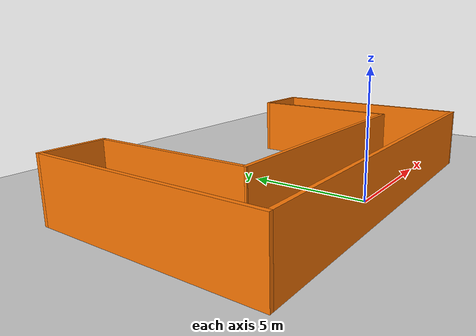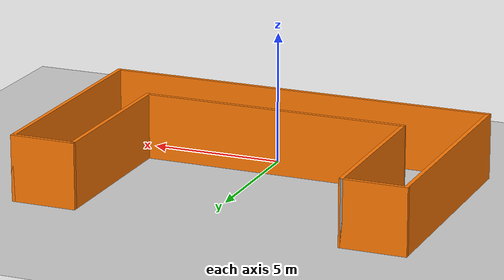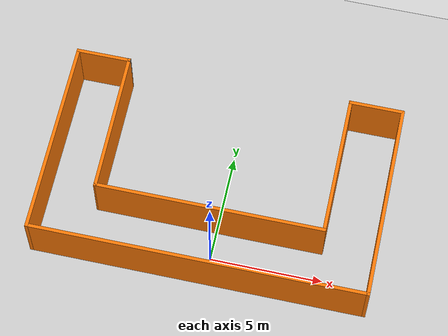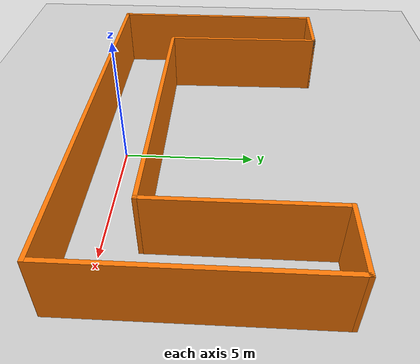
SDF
<sdf version="1.6">
 <world name="default">
  <light name="sun" type="directional">
   <pose>0 0 10 0 -0 0</pose>
   <diffuse>0.8 0.8 0.8 1</diffuse>
   <specular>0.2 0.2 0.2 1</specular>
   <attenuation>
    <range>1000</range>
    <constant>0.9</constant>
    <linear>0.01</linear>
    <quadratic>0.001</quadratic>
   </attenuation>
   <direction>-0.5 0.1 -0.9</direction>
  </light>
  <model name="ground_plane">
   <static>1</static>
   <link name="link">
    <collision name="collision">
     <geometry><plane><normal>0 0 1</normal><size>100 100</size></plane></geometry>
     <surface>
      <contact><collide_bitmask>65535</collide_bitmask></contact>
      <friction><ode><mu>100</mu><mu2>50</mu2></ode></friction>
     </surface>
    </collision>
    <visual name="visual">
     <cast_shadows>0</cast_shadows>
     <geometry><plane><normal>0 0 1</normal><size>100 100</size></plane></geometry>
     <material>
      <script><uri>file://media/materials/scripts/gazebo.material</uri><name>Gazebo/Grey</name></script>
     </material>
    </visual>
   </link>
  </model>
  <gravity>0 0 -9.8</gravity>
  <magnetic_field>6e-06 2.3e-05 -4.2e-05</magnetic_field>
  <atmosphere type="adiabatic"/>
  <physics name="default_physics" default="0" type="ode">
   <max_step_size>0.001</max_step_size>
   <real_time_factor>1</real_time_factor>
   <real_time_update_rate>1000</real_time_update_rate>
  </physics>
  <scene><ambient>0.4 0.4 0.4 1</ambient><background>0.7 0.7 0.7 1</background><shadows>1</shadows></scene>
  <spherical_coordinates>
   <surface_model>EARTH_WGS84</surface_model>
   <latitude_deg>0</latitude_deg>
   <longitude_deg>0</longitude_deg>
   <elevation>0</elevation>
   <heading_deg>0</heading_deg>
  </spherical_coordinates>
  <model name="Myworld">
   <pose>-0.381549 3.28184 0 0 -0 0</pose>
   <link name="Wall_0">
    <collision name="Wall_0_Collision">
     <geometry><box><size>2.5 0.15 2.5</size></box></geometry>
     <pose>0 0 1.25 0 -0 0</pose>
    </collision>
    <visual name="Wall_0_Visual">
     <pose>0 0 1.25 0 -0 0</pose>
     <geometry><box><size>2.5 0.15 2.5</size></box></geometry>
     <material>
      <script><uri>file://media/materials/scripts/gazebo.material</uri><name>Gazebo/Grey</name></script>
      <ambient>0.996078 0.47451 0.0196078 1</ambient>
     </material>
     <meta><layer>0</layer></meta>
    </visual>
    <pose>-6.25 4.42476 0 0 -0 3.14159</pose>
   </link>
   <link name="Wall_1">
    <collision name="Wall_1_Collision">
     <geometry><box><size>9 0.15 2.5</size></box></geometry>
     <pose>0 0 1.25 0 -0 0</pose>
    </collision>
    <visual name="Wall_1_Visual">
     <pose>0 0 1.25 0 -0 0</pose>
     <geometry><box><size>9 0.15 2.5</size></box></geometry>
     <material>
      <script><uri>file://media/materials/scripts/gazebo.material</uri><name>Gazebo/Grey</name></script>
      <ambient>0.996078 0.47451 0.0196078 1</ambient>
     </material>
     <meta><layer>0</layer></meta>
    </visual>
    <pose>-7.425 -0.000245 0 0 0 -1.5708</pose>
   </link>
   <link name="Wall_2">
    <collision name="Wall_2_Collision">
     <geometry><box><size>15 0.15 2.5</size></box></geometry>
     <pose>0 0 1.25 0 -0 0</pose>
    </collision>
    <visual name="Wall_2_Visual">
     <pose>0 0 1.25 0 -0 0</pose>
     <geometry><box><size>15 0.15 2.5</size></box></geometry>
     <material>
      <script><uri>file://media/materials/scripts/gazebo.material</uri><name>Gazebo/Grey</name></script>
      <ambient>0.996078 0.47451 0.0196078 1</ambient>
     </material>
     <meta><layer>0</layer></meta>
    </visual>
    <pose>0 -4.42524 0 0 -0 0</pose>
   </link>
   <link name="Wall_3">
    <collision name="Wall_3_Collision">
     <geometry><box><size>9 0.15 2.5</size></box></geometry>
     <pose>0 0 1.25 0 -0 0</pose>
    </collision>
    <visual name="Wall_3_Visual">
     <pose>0 0 1.25 0 -0 0</pose>
     <geometry><box><size>9 0.15 2.5</size></box></geometry>
     <material>
      <script><uri>file://media/materials/scripts/gazebo.material</uri><name>Gazebo/Grey</name></script>
      <ambient>0.996078 0.47451 0.0196078 1</ambient>
     </material>
     <meta><layer>0</layer></meta>
    </visual>
    <pose>7.425 -0.000245 0 0 -0 1.5708</pose>
   </link>
   <link name="Wall_4">
    <collision name="Wall_4_Collision">
     <geometry><box><size>2.5 0.15 2.5</size></box></geometry>
     <pose>0 0 1.25 0 -0 0</pose>
    </collision>
    <visual name="Wall_4_Visual">
     <pose>0 0 1.25 0 -0 0</pose>
     <geometry><box><size>2.5 0.15 2.5</size></box></geometry>
     <material>
      <script><uri>file://media/materials/scripts/gazebo.material</uri><name>Gazebo/Grey</name></script>
      <ambient>0.996078 0.47451 0.0196078 1</ambient>
     </material>
     <meta><layer>0</layer></meta>
    </visual>
    <pose>6.25 4.42476 0 0 -0 3.14159</pose>
   </link>
   <link name="Wall_5">
    <collision name="Wall_5_Collision">
     <geometry><box><size>6.5 0.15 2.5</size></box></geometry>
     <pose>0 0 1.25 0 -0 0</pose>
    </collision>
    <visual name="Wall_5_Visual">
     <pose>0 0 1.25 0 -0 0</pose>
     <geometry><box><size>6.5 0.15 2.5</size></box></geometry>
     <material>
      <script><uri>file://media/materials/scripts/gazebo.material</uri><name>Gazebo/Grey</name></script>
      <ambient>0.996078 0.47451 0.0196078 1</ambient>
     </material>
     <meta><layer>0</layer></meta>
    </visual>
    <pose>5.075 1.24975 0 0 0 -1.5708</pose>
   </link>
   <link name="Wall_6">
    <collision name="Wall_6_Collision">
     <geometry><box><size>10.25 0.15 2.5</size></box></geometry>
     <pose>0 0 1.25 0 -0 0</pose>
    </collision>
    <visual name="Wall_6_Visual">
     <pose>0 0 1.25 0 -0 0</pose>
     <geometry><box><size>10.25 0.15 2.5</size></box></geometry>
     <material>
      <script><uri>file://media/materials/scripts/gazebo.material</uri><name>Gazebo/Grey</name></script>
      <ambient>0.996078 0.47451 0.0196078 1</ambient>
     </material>
     <meta><layer>0</layer></meta>
    </visual>
    <pose>0.025 -1.92525 0 0 -0 3.14159</pose>
   </link>
   <link name="Wall_7">
    <collision name="Wall_7_Collision">
     <geometry><box><size>6.5 0.15 2.5</size></box></geometry>
     <pose>0 0 1.25 0 -0 0</pose>
    </collision>
    <visual name="Wall_7_Visual">
     <pose>0 0 1.25 0 -0 0</pose>
     <geometry><box><size>6.5 0.15 2.5</size></box></geometry>
     <material>
      <script><uri>file://media/materials/scripts/gazebo.material</uri><name>Gazebo/Grey</name></script>
      <ambient>0.996078 0.47451 0.0196078 1</ambient>
     </material>
     <meta><layer>0</layer></meta>
    </visual>
    <pose>-5.05 1.24975 0 0 -0 1.57867</pose>
   </link>
   <link name="Wall_8">
    <collision name="Wall_8_Collision">
     <geometry><box><size>0.15 0.15 2.5</size></box></geometry>
     <pose>0 0 1.25 0 -0 0</pose>
    </collision>
    <visual name="Wall_8_Visual">
     <pose>0 0 1.25 0 -0 0</pose>
     <geometry><box><size>0.15 0.15 2.5</size></box></geometry>
     <material>
      <script><uri>file://media/materials/scripts/gazebo.material</uri><name>Gazebo/Grey</name></script>
      <ambient>1 1 1 1</ambient>
     </material>
     <meta><layer>0</layer></meta>
    </visual>
    <pose>-5.075 4.42476 0 0 -0 0</pose>
   </link>
   <static>1</static>
  </model>
 </world>
</sdf>
